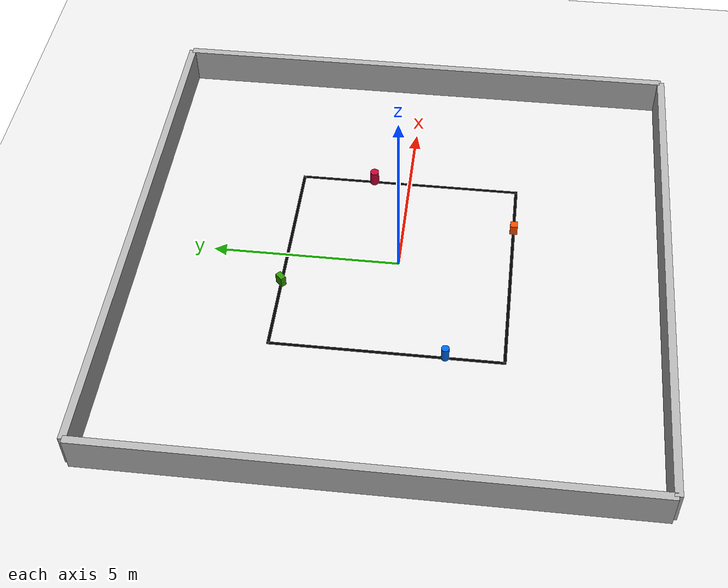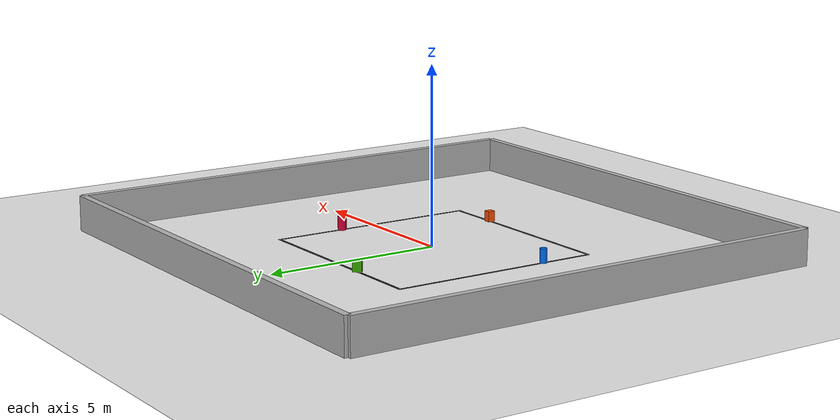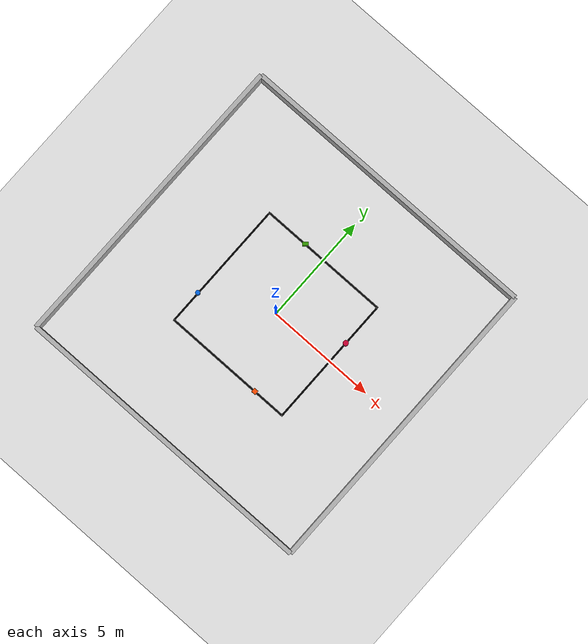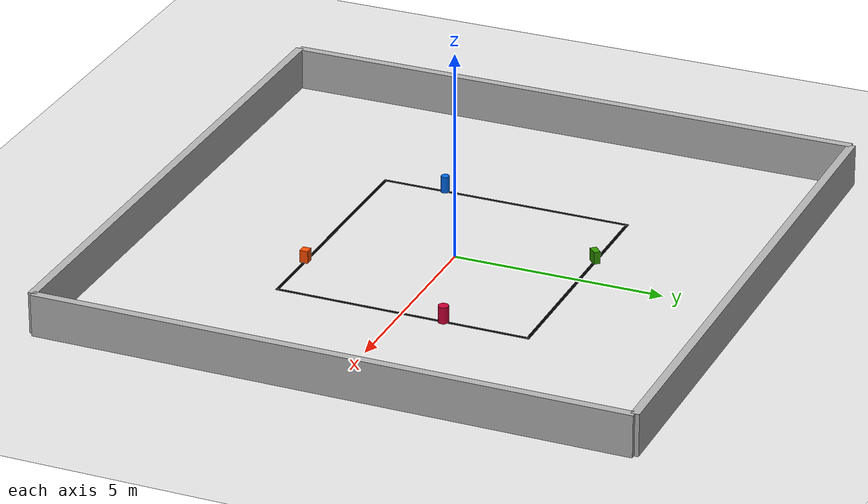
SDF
<?xml version="1.0"?>
<sdf version="1.9">
  <world name="line_tracking_world">

    <!-- =================== PHYSICS =================== -->
    <physics name="1ms" type="ignored">
      <max_step_size>0.001</max_step_size>
      <real_time_factor>1.0</real_time_factor>
    </physics>

    <!-- =================== REQUIRED SYSTEM PLUGINS =================== -->
    <!-- These MUST all be present for Gazebo Harmonic to work correctly -->
    <plugin filename="gz-sim-physics-system"
            name="gz::sim::systems::Physics"/>

    <plugin filename="gz-sim-user-commands-system"
            name="gz::sim::systems::UserCommands"/>

    <plugin filename="gz-sim-scene-broadcaster-system"
            name="gz::sim::systems::SceneBroadcaster"/>

    <!-- Sensors plugin - REQUIRED for camera and lidar to publish data -->
    <plugin filename="gz-sim-sensors-system"
            name="gz::sim::systems::Sensors">
      <render_engine>ogre2</render_engine>
    </plugin>

    <plugin filename="gz-sim-contact-system"
            name="gz::sim::systems::Contact"/>

    <!-- =================== LIGHTING =================== -->
    <light name="sun" type="directional">
      <cast_shadows>true</cast_shadows>
      <pose>0 0 10 0 0 0</pose>
      <diffuse>0.8 0.8 0.8 1</diffuse>
      <specular>0.2 0.2 0.2 1</specular>
      <direction>-0.5 0.1 -0.9</direction>
      <attenuation>
        <range>1000</range>
        <linear>0.01</linear>
        <constant>0.9</constant>
        <quadratic>0.001</quadratic>
      </attenuation>
    </light>

    <!-- =================== WHITE GROUND PLANE =================== -->
    <model name="ground_plane">
      <static>true</static>
      <link name="link">
        <collision name="collision">
          <geometry>
            <plane><normal>0 0 1</normal><size>20 20</size></plane>
          </geometry>
          <surface>
            <friction><ode><mu>1</mu><mu2>1</mu2></ode></friction>
          </surface>
        </collision>
        <visual name="visual">
          <cast_shadows>false</cast_shadows>
          <geometry>
            <plane><normal>0 0 1</normal><size>20 20</size></plane>
          </geometry>
          <material>
            <ambient>0.9 0.9 0.9 1</ambient>
            <diffuse>0.9 0.9 0.9 1</diffuse>
            <specular>0.1 0.1 0.1 1</specular>
          </material>
        </visual>
      </link>
    </model>

    <!-- =================== BLACK LINE TRACK =================== -->

    <model name="track_bottom"><static>true</static><pose>0 -3 0.001 0 0 0</pose>
      <link name="link">
        <visual name="v"><geometry><box><size>6.0 0.08 0.002</size></box></geometry>
          <material><ambient>0 0 0 1</ambient><diffuse>0 0 0 1</diffuse></material></visual>
        <collision name="c"><geometry><box><size>6.0 0.08 0.002</size></box></geometry></collision>
      </link>
    </model>

    <model name="track_top"><static>true</static><pose>0 3 0.001 0 0 0</pose>
      <link name="link">
        <visual name="v"><geometry><box><size>6.0 0.08 0.002</size></box></geometry>
          <material><ambient>0 0 0 1</ambient><diffuse>0 0 0 1</diffuse></material></visual>
        <collision name="c"><geometry><box><size>6.0 0.08 0.002</size></box></geometry></collision>
      </link>
    </model>

    <model name="track_right"><static>true</static><pose>3 0 0.001 0 0 0</pose>
      <link name="link">
        <visual name="v"><geometry><box><size>0.08 6.0 0.002</size></box></geometry>
          <material><ambient>0 0 0 1</ambient><diffuse>0 0 0 1</diffuse></material></visual>
        <collision name="c"><geometry><box><size>0.08 6.0 0.002</size></box></geometry></collision>
      </link>
    </model>

    <model name="track_left"><static>true</static><pose>-3 0 0.001 0 0 0</pose>
      <link name="link">
        <visual name="v"><geometry><box><size>0.08 6.0 0.002</size></box></geometry>
          <material><ambient>0 0 0 1</ambient><diffuse>0 0 0 1</diffuse></material></visual>
        <collision name="c"><geometry><box><size>0.08 6.0 0.002</size></box></geometry></collision>
      </link>
    </model>

    <!-- Corners -->
    <model name="corner_tr"><static>true</static><pose>3  3 0.001 0 0 0</pose><link name="link">
      <visual name="v"><geometry><box><size>0.08 0.08 0.002</size></box></geometry><material><ambient>0 0 0 1</ambient><diffuse>0 0 0 1</diffuse></material></visual>
      <collision name="c"><geometry><box><size>0.08 0.08 0.002</size></box></geometry></collision></link></model>

    <model name="corner_tl"><static>true</static><pose>-3  3 0.001 0 0 0</pose><link name="link">
      <visual name="v"><geometry><box><size>0.08 0.08 0.002</size></box></geometry><material><ambient>0 0 0 1</ambient><diffuse>0 0 0 1</diffuse></material></visual>
      <collision name="c"><geometry><box><size>0.08 0.08 0.002</size></box></geometry></collision></link></model>

    <model name="corner_br"><static>true</static><pose>3 -3 0.001 0 0 0</pose><link name="link">
      <visual name="v"><geometry><box><size>0.08 0.08 0.002</size></box></geometry><material><ambient>0 0 0 1</ambient><diffuse>0 0 0 1</diffuse></material></visual>
      <collision name="c"><geometry><box><size>0.08 0.08 0.002</size></box></geometry></collision></link></model>

    <model name="corner_bl"><static>true</static><pose>-3 -3 0.001 0 0 0</pose><link name="link">
      <visual name="v"><geometry><box><size>0.08 0.08 0.002</size></box></geometry><material><ambient>0 0 0 1</ambient><diffuse>0 0 0 1</diffuse></material></visual>
      <collision name="c"><geometry><box><size>0.08 0.08 0.002</size></box></geometry></collision></link></model>

    <!-- =================== OBSTACLES =================== -->

    <model name="obstacle_1"><static>true</static><pose>1.5 -3 0.15 0 0 0</pose>
      <link name="link">
        <collision name="c"><geometry><box><size>0.2 0.2 0.3</size></box></geometry></collision>
        <visual name="v"><geometry><box><size>0.2 0.2 0.3</size></box></geometry>
          <material><ambient>1.0 0.3 0.0 1</ambient><diffuse>1.0 0.3 0.0 1</diffuse></material></visual>
      </link>
    </model>

    <model name="obstacle_2"><static>true</static><pose>3 1.0 0.2 0 0 0</pose>
      <link name="link">
        <collision name="c"><geometry><cylinder><radius>0.12</radius><length>0.4</length></cylinder></geometry></collision>
        <visual name="v"><geometry><cylinder><radius>0.12</radius><length>0.4</length></cylinder></geometry>
          <material><ambient>0.8 0.0 0.2 1</ambient><diffuse>0.8 0.0 0.2 1</diffuse></material></visual>
      </link>
    </model>

    <model name="obstacle_3"><static>true</static><pose>-1.0 3 0.15 0 0 0.785</pose>
      <link name="link">
        <collision name="c"><geometry><box><size>0.25 0.15 0.3</size></box></geometry></collision>
        <visual name="v"><geometry><box><size>0.25 0.15 0.3</size></box></geometry>
          <material><ambient>0.2 0.6 0.0 1</ambient><diffuse>0.2 0.6 0.0 1</diffuse></material></visual>
      </link>
    </model>

    <model name="obstacle_4"><static>true</static><pose>-3 -1.5 0.2 0 0 0</pose>
      <link name="link">
        <collision name="c"><geometry><cylinder><radius>0.1</radius><length>0.4</length></cylinder></geometry></collision>
        <visual name="v"><geometry><cylinder><radius>0.1</radius><length>0.4</length></cylinder></geometry>
          <material><ambient>0.0 0.4 0.9 1</ambient><diffuse>0.0 0.4 0.9 1</diffuse></material></visual>
      </link>
    </model>

    <!-- =================== BOUNDARY WALLS =================== -->
    <model name="wall_north"><static>true</static><pose>0  7 0.5 0 0 0</pose><link name="link">
      <collision name="c"><geometry><box><size>14 0.2 1</size></box></geometry></collision>
      <visual name="v"><geometry><box><size>14 0.2 1</size></box></geometry><material><ambient>0.7 0.7 0.7 1</ambient><diffuse>0.7 0.7 0.7 1</diffuse></material></visual></link></model>

    <model name="wall_south"><static>true</static><pose>0 -7 0.5 0 0 0</pose><link name="link">
      <collision name="c"><geometry><box><size>14 0.2 1</size></box></geometry></collision>
      <visual name="v"><geometry><box><size>14 0.2 1</size></box></geometry><material><ambient>0.7 0.7 0.7 1</ambient><diffuse>0.7 0.7 0.7 1</diffuse></material></visual></link></model>

    <model name="wall_east"><static>true</static><pose> 7 0 0.5 0 0 0</pose><link name="link">
      <collision name="c"><geometry><box><size>0.2 14 1</size></box></geometry></collision>
      <visual name="v"><geometry><box><size>0.2 14 1</size></box></geometry><material><ambient>0.7 0.7 0.7 1</ambient><diffuse>0.7 0.7 0.7 1</diffuse></material></visual></link></model>

    <model name="wall_west"><static>true</static><pose>-7 0 0.5 0 0 0</pose><link name="link">
      <collision name="c"><geometry><box><size>0.2 14 1</size></box></geometry></collision>
      <visual name="v"><geometry><box><size>0.2 14 1</size></box></geometry><material><ambient>0.7 0.7 0.7 1</ambient><diffuse>0.7 0.7 0.7 1</diffuse></material></visual></link></model>

  </world>
</sdf>
